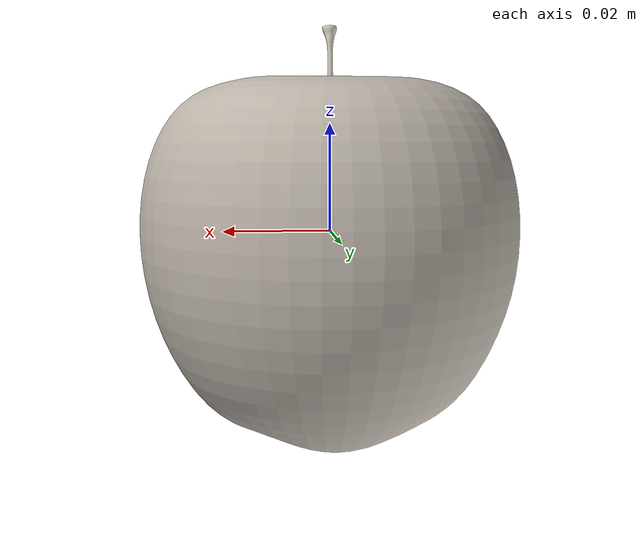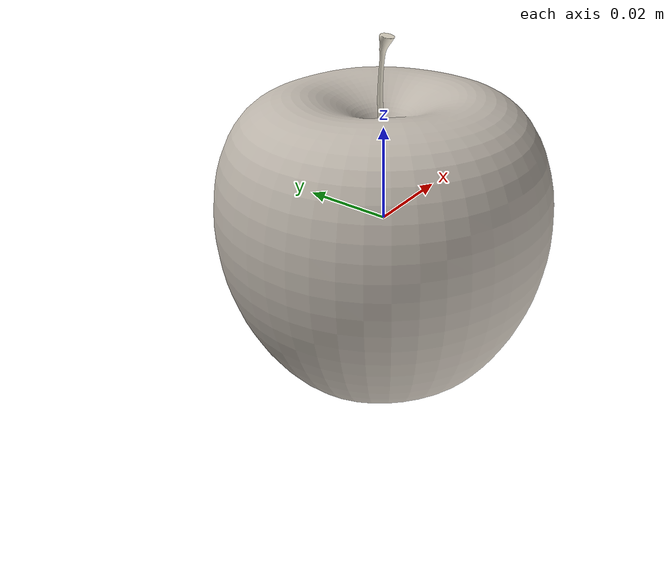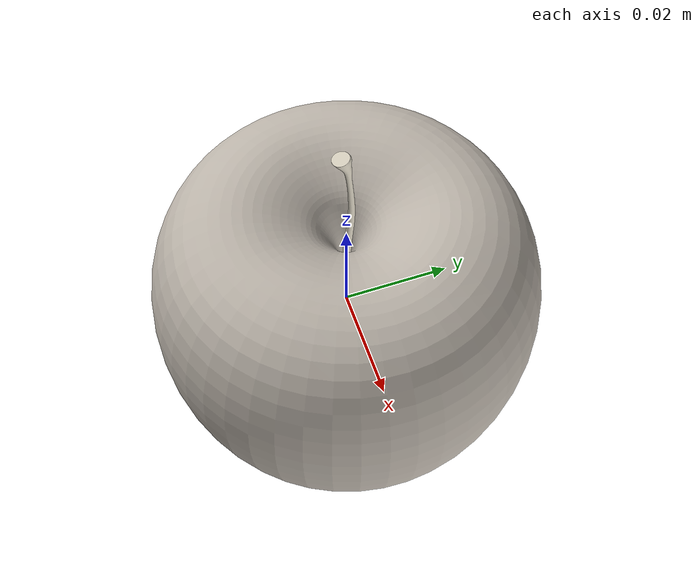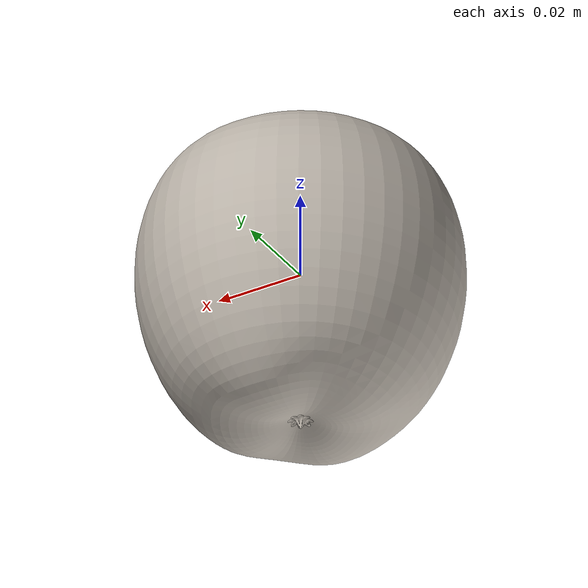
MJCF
<?xml version="1.0" ?>
<mujoco model="red_apple">
	<compiler meshdir="red_apple/meshes" texturedir="red_apple/textures" angle="radian" autolimits="true" balanceinertia="true" boundmass="0.000001" boundinertia="0.000001"/>
	<default>
		<default class="visual">
			<geom contype="0" conaffinity="0"/>
		</default>
		<default class="collision">
			<geom rgba="1.0 0.0 0.0 0.0"/>
		</default>
	</default>
	<asset>
		<mesh name="AppleStalk" file="stl/AppleStalk.stl" scale="1.0 1.0 1.0"/>
		<mesh name="AppleStalk_001" file="stl/AppleStalk_001.stl" scale="1.0 1.0 1.0"/>
		<mesh name="AppleStalk_002" file="stl/AppleStalk_002.stl" scale="1.0 1.0 1.0"/>
		<mesh name="ApplePeel" file="obj/ApplePeel.obj" scale="1.0 1.0 1.0"/>
		<mesh name="ApplePeel_001" file="stl/ApplePeel_001.stl" scale="1.0 1.0 1.0"/>
		<mesh name="ApplePeel_002" file="stl/ApplePeel_002.stl" scale="1.0 1.0 1.0"/>
		<mesh name="ApplePeel_003" file="stl/ApplePeel_003.stl" scale="1.0 1.0 1.0"/>
		<mesh name="ApplePeel_004" file="stl/ApplePeel_004.stl" scale="1.0 1.0 1.0"/>
		<mesh name="AppleSeed" file="obj/AppleSeed.obj" scale="1.0 1.0 1.0"/>
		<mesh name="AppleSeed_001" file="stl/AppleSeed_001.stl" scale="1.0 1.0 1.0"/>
		<mesh name="AppleSeed_002" file="stl/AppleSeed_002.stl" scale="1.0 1.0 1.0"/>
		<mesh name="AppleSeed_003" file="stl/AppleSeed_003.stl" scale="1.0 1.0 1.0"/>
		<mesh name="AppleSeed_004" file="stl/AppleSeed_004.stl" scale="1.0 1.0 1.0"/>
		<mesh name="AppleCaylx" file="obj/AppleCaylx.obj" scale="1.0 1.0 1.0"/>
		<mesh name="AppleCaylx_001" file="stl/AppleCaylx_001.stl" scale="1.0 1.0 1.0"/>
		<mesh name="AppleCaylx_002" file="stl/AppleCaylx_002.stl" scale="1.0 1.0 1.0"/>
		<mesh name="AppleCaylx_003" file="stl/AppleCaylx_003.stl" scale="1.0 1.0 1.0"/>
		<mesh name="AppleCaylx_004" file="stl/AppleCaylx_004.stl" scale="1.0 1.0 1.0"/>
		<mesh name="AppleCaylx_005" file="stl/AppleCaylx_005.stl" scale="1.0 1.0 1.0"/>
		<mesh name="AppleCaylx_006" file="stl/AppleCaylx_006.stl" scale="1.0 1.0 1.0"/>
		<mesh name="AppleCaylx_007" file="stl/AppleCaylx_007.stl" scale="1.0 1.0 1.0"/>
		<mesh name="AppleCaylx_008" file="stl/AppleCaylx_008.stl" scale="1.0 1.0 1.0"/>
		<mesh name="AppleCaylx_009" file="stl/AppleCaylx_009.stl" scale="1.0 1.0 1.0"/>
		<mesh name="AppleCaylx_010" file="stl/AppleCaylx_010.stl" scale="1.0 1.0 1.0"/>
		<mesh name="AppleCaylx_011" file="stl/AppleCaylx_011.stl" scale="1.0 1.0 1.0"/>
		<mesh name="AppleCaylx_012" file="stl/AppleCaylx_012.stl" scale="1.0 1.0 1.0"/>
		<mesh name="AppleCaylx_013" file="stl/AppleCaylx_013.stl" scale="1.0 1.0 1.0"/>
		<mesh name="AppleCaylx_014" file="stl/AppleCaylx_014.stl" scale="1.0 1.0 1.0"/>
		<mesh name="AppleCaylx_015" file="stl/AppleCaylx_015.stl" scale="1.0 1.0 1.0"/>
		<mesh name="AppleCaylx_016" file="stl/AppleCaylx_016.stl" scale="1.0 1.0 1.0"/>
		<mesh name="AppleCaylx_017" file="stl/AppleCaylx_017.stl" scale="1.0 1.0 1.0"/>
		<mesh name="AppleCaylx_018" file="stl/AppleCaylx_018.stl" scale="1.0 1.0 1.0"/>
		<mesh name="AppleCaylx_019" file="stl/AppleCaylx_019.stl" scale="1.0 1.0 1.0"/>
		<mesh name="AppleCaylx_020" file="stl/AppleCaylx_020.stl" scale="1.0 1.0 1.0"/>
		<mesh name="AppleCaylx_021" file="stl/AppleCaylx_021.stl" scale="1.0 1.0 1.0"/>
		<mesh name="AppleCaylx_022" file="stl/AppleCaylx_022.stl" scale="1.0 1.0 1.0"/>
		<mesh name="AppleCaylx_023" file="stl/AppleCaylx_023.stl" scale="1.0 1.0 1.0"/>
		<mesh name="AppleCaylx_024" file="stl/AppleCaylx_024.stl" scale="1.0 1.0 1.0"/>
		<mesh name="AppleCaylx_025" file="stl/AppleCaylx_025.stl" scale="1.0 1.0 1.0"/>
		<mesh name="AppleCaylx_026" file="stl/AppleCaylx_026.stl" scale="1.0 1.0 1.0"/>
		<mesh name="AppleCaylx_027" file="stl/AppleCaylx_027.stl" scale="1.0 1.0 1.0"/>
		<mesh name="AppleCaylx_028" file="stl/AppleCaylx_028.stl" scale="1.0 1.0 1.0"/>
		<mesh name="AppleCaylx_029" file="stl/AppleCaylx_029.stl" scale="1.0 1.0 1.0"/>
		<mesh name="AppleCaylx_030" file="stl/AppleCaylx_030.stl" scale="1.0 1.0 1.0"/>
		<mesh name="AppleCaylx_031" file="stl/AppleCaylx_031.stl" scale="1.0 1.0 1.0"/>
		<mesh name="AppleCaylx_032" file="stl/AppleCaylx_032.stl" scale="1.0 1.0 1.0"/>
		<mesh name="AppleCaylx_033" file="stl/AppleCaylx_033.stl" scale="1.0 1.0 1.0"/>
		<mesh name="AppleCaylx_034" file="stl/AppleCaylx_034.stl" scale="1.0 1.0 1.0"/>
		<mesh name="AppleCaylx_035" file="stl/AppleCaylx_035.stl" scale="1.0 1.0 1.0"/>
		<mesh name="AppleCaylx_036" file="stl/AppleCaylx_036.stl" scale="1.0 1.0 1.0"/>
		<mesh name="AppleCaylx_037" file="stl/AppleCaylx_037.stl" scale="1.0 1.0 1.0"/>
		<mesh name="AppleCaylx_038" file="stl/AppleCaylx_038.stl" scale="1.0 1.0 1.0"/>
		<mesh name="AppleCaylx_039" file="stl/AppleCaylx_039.stl" scale="1.0 1.0 1.0"/>
		<mesh name="AppleCaylx_040" file="stl/AppleCaylx_040.stl" scale="1.0 1.0 1.0"/>
		<mesh name="AppleCaylx_041" file="stl/AppleCaylx_041.stl" scale="1.0 1.0 1.0"/>
		<mesh name="AppleCaylx_042" file="stl/AppleCaylx_042.stl" scale="1.0 1.0 1.0"/>
		<mesh name="AppleCaylx_043" file="stl/AppleCaylx_043.stl" scale="1.0 1.0 1.0"/>
		<mesh name="AppleCaylx_044" file="stl/AppleCaylx_044.stl" scale="1.0 1.0 1.0"/>
		<mesh name="AppleCaylx_045" file="stl/AppleCaylx_045.stl" scale="1.0 1.0 1.0"/>
		<mesh name="AppleCaylx_046" file="stl/AppleCaylx_046.stl" scale="1.0 1.0 1.0"/>
		<mesh name="AppleCaylx_047" file="stl/AppleCaylx_047.stl" scale="1.0 1.0 1.0"/>
		<mesh name="AppleCaylx_048" file="stl/AppleCaylx_048.stl" scale="1.0 1.0 1.0"/>
		<mesh name="AppleCaylx_049" file="stl/AppleCaylx_049.stl" scale="1.0 1.0 1.0"/>
		<mesh name="AppleCaylx_050" file="stl/AppleCaylx_050.stl" scale="1.0 1.0 1.0"/>
		<mesh name="AppleCaylx_051" file="stl/AppleCaylx_051.stl" scale="1.0 1.0 1.0"/>
		<mesh name="AppleCaylx_052" file="stl/AppleCaylx_052.stl" scale="1.0 1.0 1.0"/>
		<mesh name="AppleCaylx_053" file="stl/AppleCaylx_053.stl" scale="1.0 1.0 1.0"/>
		<mesh name="AppleCaylx_054" file="stl/AppleCaylx_054.stl" scale="1.0 1.0 1.0"/>
		<mesh name="AppleCaylx_055" file="stl/AppleCaylx_055.stl" scale="1.0 1.0 1.0"/>
		<mesh name="AppleCaylx_056" file="stl/AppleCaylx_056.stl" scale="1.0 1.0 1.0"/>
		<mesh name="AppleCaylx_057" file="stl/AppleCaylx_057.stl" scale="1.0 1.0 1.0"/>
		<mesh name="AppleCaylx_058" file="stl/AppleCaylx_058.stl" scale="1.0 1.0 1.0"/>
		<mesh name="AppleCaylx_059" file="stl/AppleCaylx_059.stl" scale="1.0 1.0 1.0"/>
		<mesh name="AppleCaylx_060" file="stl/AppleCaylx_060.stl" scale="1.0 1.0 1.0"/>
		<mesh name="AppleCaylx_061" file="stl/AppleCaylx_061.stl" scale="1.0 1.0 1.0"/>
		<material name="M_AppleStalk" rgba="0.8621000051498413 0.8342999815940857 0.7662000060081482 1.0" emission="0.0"/>
		<material name="M_ApplePeel" texture="T_ApplePeel"/>
		<material name="M_AppleSeed" texture="T_AppleSeed"/>
		<material name="M_AppleCaylx" texture="T_AppleCaylx"/>
		<texture name="T_ApplePeel" type="2d" file="T_ApplePeel.png"/>
		<texture name="T_AppleSeed" type="2d" file="T_AppleSeed.png"/>
		<texture name="T_AppleCaylx" type="2d" file="T_AppleCaylx.png"/>
	</asset>
	<worldbody>
		<body name="red_apple" pos="0.0 0.0 0.0" quat="1.0 0.0 0.0 0.0">
			<body name="apple_stalk" pos="0.0 0.0 0.0" quat="1.0 0.0 0.0 0.0">
				<inertial mass="3.540629768394865e-05" pos="3.0206952494893358e-09 0.00018739681399893016 0.025003446266055107" quat="0.7071051001548767 -0.001577188610099256 -0.7071049809455872 0.0015790637116879225" diaginertia="1.837902052770346e-11 2.4994736946837293e-08 2.5002570680499048e-08"/>
				<geom name="AppleStalk" type="mesh" pos="0.0 0.0 0.0" quat="1.0 0.0 0.0 0.0" mesh="AppleStalk" material="M_AppleStalk" class="visual"/>
				<geom name="AppleStalk_001" type="mesh" pos="0.0 0.0 0.0" quat="1.0 0.0 0.0 0.0" mesh="AppleStalk_001" class="collision"/>
				<geom name="AppleStalk_002" type="mesh" pos="0.0 0.0 0.0" quat="1.0 0.0 0.0 0.0" mesh="AppleStalk_002" class="collision"/>
			</body>
			<body name="apple_seed" pos="0.0 0.0 0.0" quat="1.0 0.0 0.0 0.0">
				<inertial mass="0.00022019585594534874" pos="1.0903399294548421e-09 -1.7177891331598971e-09 -0.002702832454815507" quat="0.25731590390205383 -2.19097543663338e-07 -3.833924608898087e-07 0.9663273096084595" diaginertia="5.545102155224413e-09 5.545106596116511e-09 6.824700804486383e-09"/>
				<geom name="AppleSeed" type="mesh" pos="0.0 0.0 0.0" quat="1.0 0.0 0.0 0.0" mesh="AppleSeed" material="M_AppleSeed" class="visual"/>
				<geom name="AppleSeed_001" type="mesh" pos="0.0 0.0 0.0" quat="1.0 0.0 0.0 0.0" mesh="AppleSeed_001" class="collision"/>
				<geom name="AppleSeed_002" type="mesh" pos="0.0 0.0 0.0" quat="1.0 0.0 0.0 0.0" mesh="AppleSeed_002" class="collision"/>
				<geom name="AppleSeed_003" type="mesh" pos="0.0 0.0 0.0" quat="1.0 0.0 0.0 0.0" mesh="AppleSeed_003" class="collision"/>
				<geom name="AppleSeed_004" type="mesh" pos="0.0 0.0 0.0" quat="1.0 0.0 0.0 0.0" mesh="AppleSeed_004" class="collision"/>
			</body>
			<body name="apple_peel" pos="0.0 0.0 0.0" quat="1.0 0.0 0.0 0.0">
				<inertial mass="0.0015162392519414425" pos="2.4516245389349933e-07 6.230711591115323e-08 -0.002904926659539342" quat="0.6638001799583435 -0.24362272024154663 0.6638485789299011 0.2435617297887802" diaginertia="1.2347761639830424e-06 1.2760066283590277e-06 1.2760090157826198e-06"/>
				<geom name="ApplePeel" type="mesh" pos="0.0 0.0 0.0" quat="1.0 0.0 0.0 0.0" mesh="ApplePeel" material="M_ApplePeel" class="visual"/>
				<geom name="ApplePeel_001" type="mesh" pos="0.0 0.0 0.0" quat="1.0 0.0 0.0 0.0" mesh="ApplePeel_001" class="collision"/>
				<geom name="ApplePeel_002" type="mesh" pos="0.0 0.0 0.0" quat="1.0 0.0 0.0 0.0" mesh="ApplePeel_002" class="collision"/>
				<geom name="ApplePeel_003" type="mesh" pos="0.0 0.0 0.0" quat="1.0 0.0 0.0 0.0" mesh="ApplePeel_003" class="collision"/>
				<geom name="ApplePeel_004" type="mesh" pos="0.0 0.0 0.0" quat="1.0 0.0 0.0 0.0" mesh="ApplePeel_004" class="collision"/>
			</body>
			<body name="apple_caylx" pos="0.0 0.0 0.0" quat="1.0 0.0 0.0 0.0">
				<inertial mass="3.982466125762585e-07" pos="8.114677285675498e-08 1.1141786444568424e-06 -0.035159844905138016" quat="-0.08026134222745895 0.7025361061096191 0.08023911714553833 0.7025402784347534" diaginertia="1.0677496213584714e-12 4.929091579342071e-10 4.929092689565095e-10"/>
				<geom name="AppleCaylx" type="mesh" pos="0.0 0.0 0.0" quat="1.0 0.0 0.0 0.0" mesh="AppleCaylx" material="M_AppleCaylx" class="visual"/>
				<geom name="AppleCaylx_001" type="mesh" pos="0.0 0.0 0.0" quat="1.0 0.0 0.0 0.0" mesh="AppleCaylx_001" class="collision"/>
				<geom name="AppleCaylx_002" type="mesh" pos="0.0 0.0 0.0" quat="1.0 0.0 0.0 0.0" mesh="AppleCaylx_002" class="collision"/>
				<geom name="AppleCaylx_003" type="mesh" pos="0.0 0.0 0.0" quat="1.0 0.0 0.0 0.0" mesh="AppleCaylx_003" class="collision"/>
				<geom name="AppleCaylx_004" type="mesh" pos="0.0 0.0 0.0" quat="1.0 0.0 0.0 0.0" mesh="AppleCaylx_004" class="collision"/>
				<geom name="AppleCaylx_005" type="mesh" pos="0.0 0.0 0.0" quat="1.0 0.0 0.0 0.0" mesh="AppleCaylx_005" class="collision"/>
				<geom name="AppleCaylx_006" type="mesh" pos="0.0 0.0 0.0" quat="1.0 0.0 0.0 0.0" mesh="AppleCaylx_006" class="collision"/>
				<geom name="AppleCaylx_007" type="mesh" pos="0.0 0.0 0.0" quat="1.0 0.0 0.0 0.0" mesh="AppleCaylx_007" class="collision"/>
				<geom name="AppleCaylx_008" type="mesh" pos="0.0 0.0 0.0" quat="1.0 0.0 0.0 0.0" mesh="AppleCaylx_008" class="collision"/>
				<geom name="AppleCaylx_009" type="mesh" pos="0.0 0.0 0.0" quat="1.0 0.0 0.0 0.0" mesh="AppleCaylx_009" class="collision"/>
				<geom name="AppleCaylx_010" type="mesh" pos="0.0 0.0 0.0" quat="1.0 0.0 0.0 0.0" mesh="AppleCaylx_010" class="collision"/>
				<geom name="AppleCaylx_011" type="mesh" pos="0.0 0.0 0.0" quat="1.0 0.0 0.0 0.0" mesh="AppleCaylx_011" class="collision"/>
				<geom name="AppleCaylx_012" type="mesh" pos="0.0 0.0 0.0" quat="1.0 0.0 0.0 0.0" mesh="AppleCaylx_012" class="collision"/>
				<geom name="AppleCaylx_013" type="mesh" pos="0.0 0.0 0.0" quat="1.0 0.0 0.0 0.0" mesh="AppleCaylx_013" class="collision"/>
				<geom name="AppleCaylx_014" type="mesh" pos="0.0 0.0 0.0" quat="1.0 0.0 0.0 0.0" mesh="AppleCaylx_014" class="collision"/>
				<geom name="AppleCaylx_015" type="mesh" pos="0.0 0.0 0.0" quat="1.0 0.0 0.0 0.0" mesh="AppleCaylx_015" class="collision"/>
				<geom name="AppleCaylx_016" type="mesh" pos="0.0 0.0 0.0" quat="1.0 0.0 0.0 0.0" mesh="AppleCaylx_016" class="collision"/>
				<geom name="AppleCaylx_017" type="mesh" pos="0.0 0.0 0.0" quat="1.0 0.0 0.0 0.0" mesh="AppleCaylx_017" class="collision"/>
				<geom name="AppleCaylx_018" type="mesh" pos="0.0 0.0 0.0" quat="1.0 0.0 0.0 0.0" mesh="AppleCaylx_018" class="collision"/>
				<geom name="AppleCaylx_019" type="mesh" pos="0.0 0.0 0.0" quat="1.0 0.0 0.0 0.0" mesh="AppleCaylx_019" class="collision"/>
				<geom name="AppleCaylx_020" type="mesh" pos="0.0 0.0 0.0" quat="1.0 0.0 0.0 0.0" mesh="AppleCaylx_020" class="collision"/>
				<geom name="AppleCaylx_021" type="mesh" pos="0.0 0.0 0.0" quat="1.0 0.0 0.0 0.0" mesh="AppleCaylx_021" class="collision"/>
				<geom name="AppleCaylx_022" type="mesh" pos="0.0 0.0 0.0" quat="1.0 0.0 0.0 0.0" mesh="AppleCaylx_022" class="collision"/>
				<geom name="AppleCaylx_023" type="mesh" pos="0.0 0.0 0.0" quat="1.0 0.0 0.0 0.0" mesh="AppleCaylx_023" class="collision"/>
				<geom name="AppleCaylx_024" type="mesh" pos="0.0 0.0 0.0" quat="1.0 0.0 0.0 0.0" mesh="AppleCaylx_024" class="collision"/>
				<geom name="AppleCaylx_025" type="mesh" pos="0.0 0.0 0.0" quat="1.0 0.0 0.0 0.0" mesh="AppleCaylx_025" class="collision"/>
				<geom name="AppleCaylx_026" type="mesh" pos="0.0 0.0 0.0" quat="1.0 0.0 0.0 0.0" mesh="AppleCaylx_026" class="collision"/>
				<geom name="AppleCaylx_027" type="mesh" pos="0.0 0.0 0.0" quat="1.0 0.0 0.0 0.0" mesh="AppleCaylx_027" class="collision"/>
				<geom name="AppleCaylx_028" type="mesh" pos="0.0 0.0 0.0" quat="1.0 0.0 0.0 0.0" mesh="AppleCaylx_028" class="collision"/>
				<geom name="AppleCaylx_029" type="mesh" pos="0.0 0.0 0.0" quat="1.0 0.0 0.0 0.0" mesh="AppleCaylx_029" class="collision"/>
				<geom name="AppleCaylx_030" type="mesh" pos="0.0 0.0 0.0" quat="1.0 0.0 0.0 0.0" mesh="AppleCaylx_030" class="collision"/>
				<geom name="AppleCaylx_031" type="mesh" pos="0.0 0.0 0.0" quat="1.0 0.0 0.0 0.0" mesh="AppleCaylx_031" class="collision"/>
				<geom name="AppleCaylx_032" type="mesh" pos="0.0 0.0 0.0" quat="1.0 0.0 0.0 0.0" mesh="AppleCaylx_032" class="collision"/>
				<geom name="AppleCaylx_033" type="mesh" pos="0.0 0.0 0.0" quat="1.0 0.0 0.0 0.0" mesh="AppleCaylx_033" class="collision"/>
				<geom name="AppleCaylx_034" type="mesh" pos="0.0 0.0 0.0" quat="1.0 0.0 0.0 0.0" mesh="AppleCaylx_034" class="collision"/>
				<geom name="AppleCaylx_035" type="mesh" pos="0.0 0.0 0.0" quat="1.0 0.0 0.0 0.0" mesh="AppleCaylx_035" class="collision"/>
				<geom name="AppleCaylx_036" type="mesh" pos="0.0 0.0 0.0" quat="1.0 0.0 0.0 0.0" mesh="AppleCaylx_036" class="collision"/>
				<geom name="AppleCaylx_037" type="mesh" pos="0.0 0.0 0.0" quat="1.0 0.0 0.0 0.0" mesh="AppleCaylx_037" class="collision"/>
				<geom name="AppleCaylx_038" type="mesh" pos="0.0 0.0 0.0" quat="1.0 0.0 0.0 0.0" mesh="AppleCaylx_038" class="collision"/>
				<geom name="AppleCaylx_039" type="mesh" pos="0.0 0.0 0.0" quat="1.0 0.0 0.0 0.0" mesh="AppleCaylx_039" class="collision"/>
				<geom name="AppleCaylx_040" type="mesh" pos="0.0 0.0 0.0" quat="1.0 0.0 0.0 0.0" mesh="AppleCaylx_040" class="collision"/>
				<geom name="AppleCaylx_041" type="mesh" pos="0.0 0.0 0.0" quat="1.0 0.0 0.0 0.0" mesh="AppleCaylx_041" class="collision"/>
				<geom name="AppleCaylx_042" type="mesh" pos="0.0 0.0 0.0" quat="1.0 0.0 0.0 0.0" mesh="AppleCaylx_042" class="collision"/>
				<geom name="AppleCaylx_043" type="mesh" pos="0.0 0.0 0.0" quat="1.0 0.0 0.0 0.0" mesh="AppleCaylx_043" class="collision"/>
				<geom name="AppleCaylx_044" type="mesh" pos="0.0 0.0 0.0" quat="1.0 0.0 0.0 0.0" mesh="AppleCaylx_044" class="collision"/>
				<geom name="AppleCaylx_045" type="mesh" pos="0.0 0.0 0.0" quat="1.0 0.0 0.0 0.0" mesh="AppleCaylx_045" class="collision"/>
				<geom name="AppleCaylx_046" type="mesh" pos="0.0 0.0 0.0" quat="1.0 0.0 0.0 0.0" mesh="AppleCaylx_046" class="collision"/>
				<geom name="AppleCaylx_047" type="mesh" pos="0.0 0.0 0.0" quat="1.0 0.0 0.0 0.0" mesh="AppleCaylx_047" class="collision"/>
				<geom name="AppleCaylx_048" type="mesh" pos="0.0 0.0 0.0" quat="1.0 0.0 0.0 0.0" mesh="AppleCaylx_048" class="collision"/>
				<geom name="AppleCaylx_049" type="mesh" pos="0.0 0.0 0.0" quat="1.0 0.0 0.0 0.0" mesh="AppleCaylx_049" class="collision"/>
				<geom name="AppleCaylx_050" type="mesh" pos="0.0 0.0 0.0" quat="1.0 0.0 0.0 0.0" mesh="AppleCaylx_050" class="collision"/>
				<geom name="AppleCaylx_051" type="mesh" pos="0.0 0.0 0.0" quat="1.0 0.0 0.0 0.0" mesh="AppleCaylx_051" class="collision"/>
				<geom name="AppleCaylx_052" type="mesh" pos="0.0 0.0 0.0" quat="1.0 0.0 0.0 0.0" mesh="AppleCaylx_052" class="collision"/>
				<geom name="AppleCaylx_053" type="mesh" pos="0.0 0.0 0.0" quat="1.0 0.0 0.0 0.0" mesh="AppleCaylx_053" class="collision"/>
				<geom name="AppleCaylx_054" type="mesh" pos="0.0 0.0 0.0" quat="1.0 0.0 0.0 0.0" mesh="AppleCaylx_054" class="collision"/>
				<geom name="AppleCaylx_055" type="mesh" pos="0.0 0.0 0.0" quat="1.0 0.0 0.0 0.0" mesh="AppleCaylx_055" class="collision"/>
				<geom name="AppleCaylx_056" type="mesh" pos="0.0 0.0 0.0" quat="1.0 0.0 0.0 0.0" mesh="AppleCaylx_056" class="collision"/>
				<geom name="AppleCaylx_057" type="mesh" pos="0.0 0.0 0.0" quat="1.0 0.0 0.0 0.0" mesh="AppleCaylx_057" class="collision"/>
				<geom name="AppleCaylx_058" type="mesh" pos="0.0 0.0 0.0" quat="1.0 0.0 0.0 0.0" mesh="AppleCaylx_058" class="collision"/>
				<geom name="AppleCaylx_059" type="mesh" pos="0.0 0.0 0.0" quat="1.0 0.0 0.0 0.0" mesh="AppleCaylx_059" class="collision"/>
				<geom name="AppleCaylx_060" type="mesh" pos="0.0 0.0 0.0" quat="1.0 0.0 0.0 0.0" mesh="AppleCaylx_060" class="collision"/>
				<geom name="AppleCaylx_061" type="mesh" pos="0.0 0.0 0.0" quat="1.0 0.0 0.0 0.0" mesh="AppleCaylx_061" class="collision"/>
			</body>
		</body>
	</worldbody>
	<equality/>
</mujoco>
